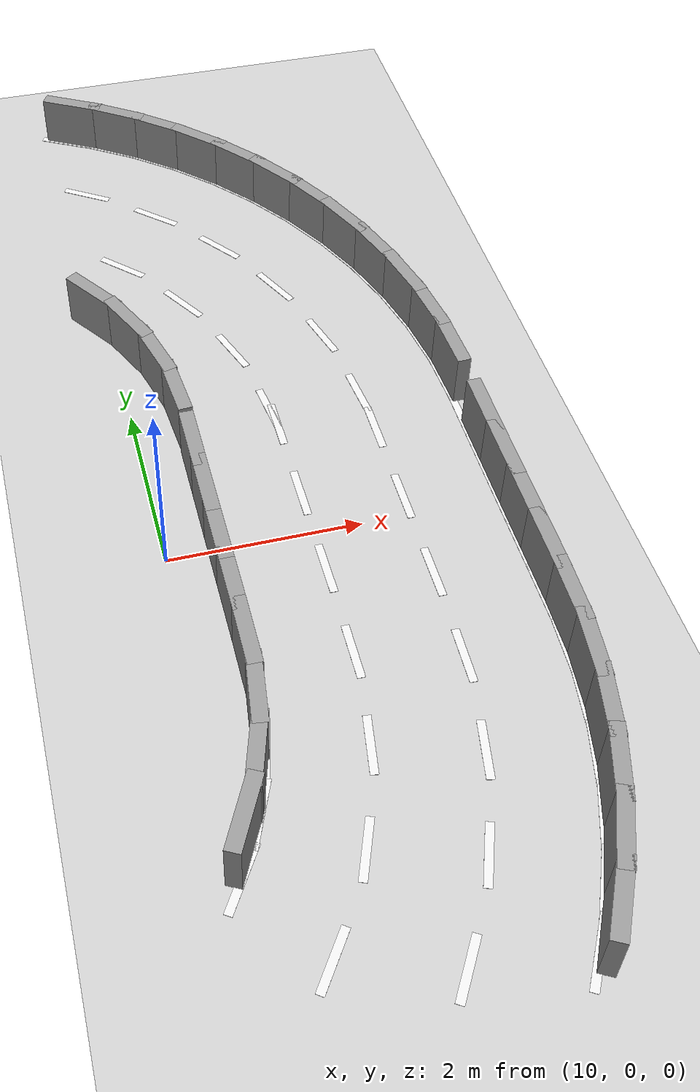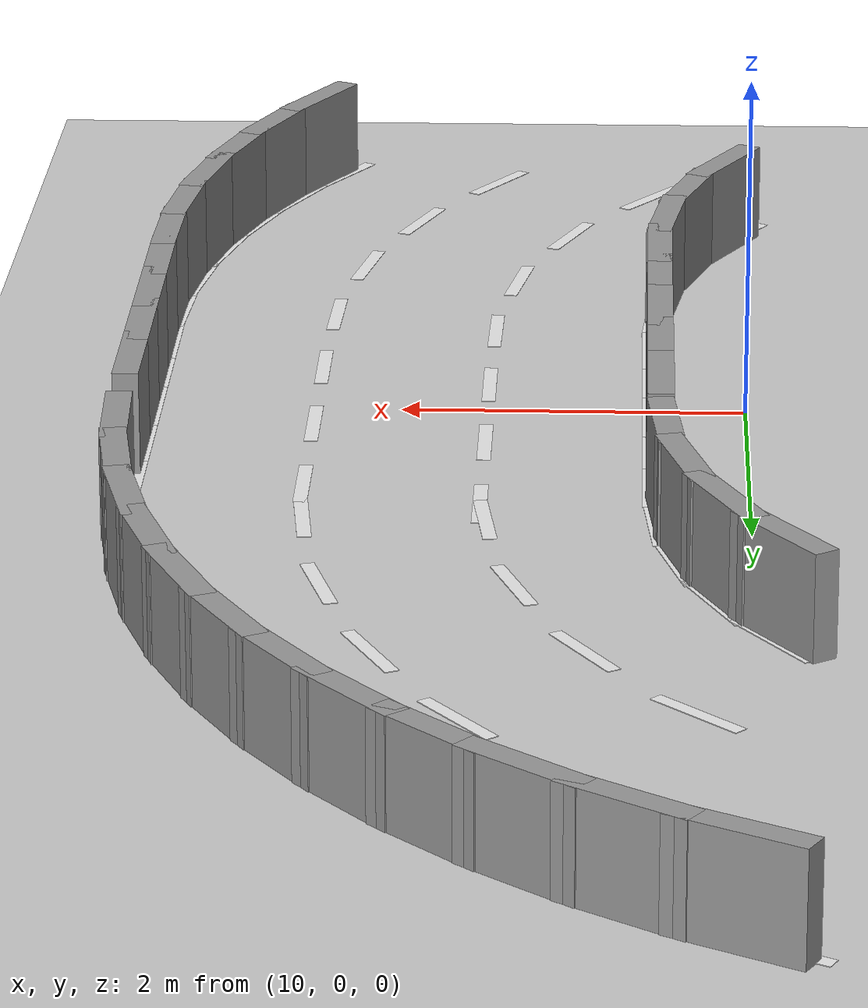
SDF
<sdf version="1.7">
 <world name="default">
  <model name="ground_plane">
   <static>1</static>
   <link name="link">
    <collision name="collision">
     <geometry><plane><normal>0 0 1</normal><size>100 100</size></plane></geometry>
     <surface><friction><ode><mu>100</mu><mu2>50</mu2></ode></friction></surface>
    </collision>
    <visual name="visual">
     <cast_shadows>0</cast_shadows>
     <geometry><plane><normal>0 0 1</normal><size>100 100</size></plane></geometry>
     <material>
      <script><uri>file://media/materials/scripts/gazebo.material</uri><name>Gazebo/Grey</name></script>
     </material>
    </visual>
   </link>
  </model>
  <model name="superspeedway">
   <link name="Wall_0">
    <collision name="Wall_0_Collision">
     <geometry><box><size>0.7493 0.1500 0.6000</size></box></geometry>
     <pose>0 0 0.3000 0 -0 0</pose>
    </collision>
    <visual name="Wall_0_Visual">
     <pose>0 0 0.3000 0 -0 0</pose>
     <geometry><box><size>0.7493 0.1500 0.6000</size></box></geometry>
     <material>
      <script><uri>file://media/materials/scripts/gazebo.material</uri><name>Gazebo/Grey</name></script>
      <ambient>1 1 1 1</ambient>
     </material>
    </visual>
    <pose>10.4743 1.7985 0 0 -0 1.65651</pose>
   </link>
   <link name="Wall_1">
    <collision name="Wall_1_Collision">
     <geometry><box><size>0.7493 0.1500 0.6000</size></box></geometry>
     <pose>0 0 0.3000 0 -0 0</pose>
    </collision>
    <visual name="Wall_1_Visual">
     <pose>0 0 0.3000 0 -0 0</pose>
     <geometry><box><size>0.7493 0.1500 0.6000</size></box></geometry>
     <material>
      <script><uri>file://media/materials/scripts/gazebo.material</uri><name>Gazebo/Grey</name></script>
      <ambient>1 1 1 1</ambient>
     </material>
    </visual>
    <pose>10.3725 2.3868 0 0 -0 1.82794</pose>
   </link>
   <link name="Wall_2">
    <collision name="Wall_2_Collision">
     <geometry><box><size>0.7493 0.1500 0.6000</size></box></geometry>
     <pose>0 0 0.3000 0 -0 0</pose>
    </collision>
    <visual name="Wall_2_Visual">
     <pose>0 0 0.3000 0 -0 0</pose>
     <geometry><box><size>0.7493 0.1500 0.6000</size></box></geometry>
     <material>
      <script><uri>file://media/materials/scripts/gazebo.material</uri><name>Gazebo/Grey</name></script>
      <ambient>1 1 1 1</ambient>
     </material>
    </visual>
    <pose>10.1718 2.9491 0 0 -0 1.99936</pose>
   </link>
   <link name="Wall_3">
    <collision name="Wall_3_Collision">
     <geometry><box><size>0.7493 0.1500 0.6000</size></box></geometry>
     <pose>0 0 0.3000 0 -0 0</pose>
    </collision>
    <visual name="Wall_3_Visual">
     <pose>0 0 0.3000 0 -0 0</pose>
     <geometry><box><size>0.7493 0.1500 0.6000</size></box></geometry>
     <material>
      <script><uri>file://media/materials/scripts/gazebo.material</uri><name>Gazebo/Grey</name></script>
      <ambient>1 1 1 1</ambient>
     </material>
    </visual>
    <pose>9.8781 3.4690 0 0 -0 2.17079</pose>
   </link>
   <link name="Wall_85">
    <collision name="Wall_85_Collision">
     <geometry><box><size>0.7493 0.1500 0.6000</size></box></geometry>
     <pose>0 0 0.3000 0 -0 0</pose>
    </collision>
    <visual name="Wall_85_Visual">
     <pose>0 0 0.3000 0 -0 0</pose>
     <geometry><box><size>0.7493 0.1500 0.6000</size></box></geometry>
     <material>
      <script><uri>file://media/materials/scripts/gazebo.material</uri><name>Gazebo/Grey</name></script>
      <ambient>1 1 1 1</ambient>
     </material>
    </visual>
    <pose>10.0879 -3.1201 0 0 -0 1.08761</pose>
   </link>
   <link name="Wall_86">
    <collision name="Wall_86_Collision">
     <geometry><box><size>0.7493 0.1500 0.6000</size></box></geometry>
     <pose>0 0 0.3000 0 -0 0</pose>
    </collision>
    <visual name="Wall_86_Visual">
     <pose>0 0 0.3000 0 -0 0</pose>
     <geometry><box><size>0.7493 0.1500 0.6000</size></box></geometry>
     <material>
      <script><uri>file://media/materials/scripts/gazebo.material</uri><name>Gazebo/Grey</name></script>
      <ambient>1 1 1 1</ambient>
     </material>
    </visual>
    <pose>10.3190 -2.5696 0 0 -0 1.25904</pose>
   </link>
   <link name="Wall_87">
    <collision name="Wall_87_Collision">
     <geometry><box><size>0.7493 0.1500 0.6000</size></box></geometry>
     <pose>0 0 0.3000 0 -0 0</pose>
    </collision>
    <visual name="Wall_87_Visual">
     <pose>0 0 0.3000 0 -0 0</pose>
     <geometry><box><size>0.7493 0.1500 0.6000</size></box></geometry>
     <material>
      <script><uri>file://media/materials/scripts/gazebo.material</uri><name>Gazebo/Grey</name></script>
      <ambient>1 1 1 1</ambient>
     </material>
    </visual>
    <pose>10.4529 -1.9877 0 0 -0 1.43046</pose>
   </link>
   <link name="Wall_88">
    <collision name="Wall_88_Collision">
     <geometry><box><size>0.7499 0.1500 0.6000</size></box></geometry>
     <pose>0 0 0.3000 0 -0 0</pose>
    </collision>
    <visual name="Wall_88_Visual">
     <pose>0 0 0.3000 0 -0 0</pose>
     <geometry><box><size>0.7499 0.1500 0.6000</size></box></geometry>
     <material>
      <script><uri>file://media/materials/scripts/gazebo.material</uri><name>Gazebo/Grey</name></script>
      <ambient>1 1 1 1</ambient>
     </material>
    </visual>
    <pose>10.4974 -1.3911 0 0 -0 1.56209</pose>
   </link>
   <link name="Wall_89">
    <collision name="Wall_89_Collision">
     <geometry><box><size>0.7500 0.1500 0.6000</size></box></geometry>
     <pose>0 0 0.3000 0 -0 0</pose>
    </collision>
    <visual name="Wall_89_Visual">
     <pose>0 0 0.3000 0 -0 0</pose>
     <geometry><box><size>0.7500 0.1500 0.6000</size></box></geometry>
     <material>
      <script><uri>file://media/materials/scripts/gazebo.material</uri><name>Gazebo/Grey</name></script>
      <ambient>1 1 1 1</ambient>
     </material>
    </visual>
    <pose>10.5000 -0.7912 0 0 -0 1.57080</pose>
   </link>
   <link name="Wall_90">
    <collision name="Wall_90_Collision">
     <geometry><box><size>0.7500 0.1500 0.6000</size></box></geometry>
     <pose>0 0 0.3000 0 -0 0</pose>
    </collision>
    <visual name="Wall_90_Visual">
     <pose>0 0 0.3000 0 -0 0</pose>
     <geometry><box><size>0.7500 0.1500 0.6000</size></box></geometry>
     <material>
      <script><uri>file://media/materials/scripts/gazebo.material</uri><name>Gazebo/Grey</name></script>
      <ambient>1 1 1 1</ambient>
     </material>
    </visual>
    <pose>10.5000 -0.1912 0 0 -0 1.57080</pose>
   </link>
   <link name="Wall_91">
    <collision name="Wall_91_Collision">
     <geometry><box><size>0.7500 0.1500 0.6000</size></box></geometry>
     <pose>0 0 0.3000 0 -0 0</pose>
    </collision>
    <visual name="Wall_91_Visual">
     <pose>0 0 0.3000 0 -0 0</pose>
     <geometry><box><size>0.7500 0.1500 0.6000</size></box></geometry>
     <material>
      <script><uri>file://media/materials/scripts/gazebo.material</uri><name>Gazebo/Grey</name></script>
      <ambient>1 1 1 1</ambient>
     </material>
    </visual>
    <pose>10.5000 0.4088 0 0 -0 1.57080</pose>
   </link>
   <link name="Wall_92">
    <collision name="Wall_92_Collision">
     <geometry><box><size>0.7500 0.1500 0.6000</size></box></geometry>
     <pose>0 0 0.3000 0 -0 0</pose>
    </collision>
    <visual name="Wall_92_Visual">
     <pose>0 0 0.3000 0 -0 0</pose>
     <geometry><box><size>0.7500 0.1500 0.6000</size></box></geometry>
     <material>
      <script><uri>file://media/materials/scripts/gazebo.material</uri><name>Gazebo/Grey</name></script>
      <ambient>1 1 1 1</ambient>
     </material>
    </visual>
    <pose>10.5000 1.0088 0 0 -0 1.57080</pose>
   </link>
   <link name="Wall_93">
    <collision name="Wall_93_Collision">
     <geometry><box><size>0.7498 0.1500 0.6000</size></box></geometry>
     <pose>0 0 0.3000 0 -0 0</pose>
    </collision>
    <visual name="Wall_93_Visual">
     <pose>0 0 0.3000 0 -0 0</pose>
     <geometry><box><size>0.7498 0.1500 0.6000</size></box></geometry>
     <material>
      <script><uri>file://media/materials/scripts/gazebo.material</uri><name>Gazebo/Grey</name></script>
      <ambient>1 1 1 1</ambient>
     </material>
    </visual>
    <pose>13.4862 1.7996 0 0 -0 1.61698</pose>
   </link>
   <link name="Wall_94">
    <collision name="Wall_94_Collision">
     <geometry><box><size>0.7498 0.1500 0.6000</size></box></geometry>
     <pose>0 0 0.3000 0 -0 0</pose>
    </collision>
    <visual name="Wall_94_Visual">
     <pose>0 0 0.3000 0 -0 0</pose>
     <geometry><box><size>0.7498 0.1500 0.6000</size></box></geometry>
     <material>
      <script><uri>file://media/materials/scripts/gazebo.material</uri><name>Gazebo/Grey</name></script>
      <ambient>1 1 1 1</ambient>
     </material>
    </visual>
    <pose>13.4309 2.3962 0 0 -0 1.70924</pose>
   </link>
   <link name="Wall_95">
    <collision name="Wall_95_Collision">
     <geometry><box><size>0.7498 0.1500 0.6000</size></box></geometry>
     <pose>0 0 0.3000 0 -0 0</pose>
    </collision>
    <visual name="Wall_95_Visual">
     <pose>0 0 0.3000 0 -0 0</pose>
     <geometry><box><size>0.7498 0.1500 0.6000</size></box></geometry>
     <material>
      <script><uri>file://media/materials/scripts/gazebo.material</uri><name>Gazebo/Grey</name></script>
      <ambient>1 1 1 1</ambient>
     </material>
    </visual>
    <pose>13.3209 2.9852 0 0 -0 1.80159</pose>
   </link>
   <link name="Wall_96">
    <collision name="Wall_96_Collision">
     <geometry><box><size>0.7498 0.1500 0.6000</size></box></geometry>
     <pose>0 0 0.3000 0 -0 0</pose>
    </collision>
    <visual name="Wall_96_Visual">
     <pose>0 0 0.3000 0 -0 0</pose>
     <geometry><box><size>0.7498 0.1500 0.6000</size></box></geometry>
     <material>
      <script><uri>file://media/materials/scripts/gazebo.material</uri><name>Gazebo/Grey</name></script>
      <ambient>1 1 1 1</ambient>
     </material>
    </visual>
    <pose>13.1571 3.5615 0 0 -0 1.89385</pose>
   </link>
   <link name="Wall_97">
    <collision name="Wall_97_Collision">
     <geometry><box><size>0.7498 0.1500 0.6000</size></box></geometry>
     <pose>0 0 0.3000 0 -0 0</pose>
    </collision>
    <visual name="Wall_97_Visual">
     <pose>0 0 0.3000 0 -0 0</pose>
     <geometry><box><size>0.7498 0.1500 0.6000</size></box></geometry>
     <material>
      <script><uri>file://media/materials/scripts/gazebo.material</uri><name>Gazebo/Grey</name></script>
      <ambient>1 1 1 1</ambient>
     </material>
    </visual>
    <pose>12.9409 4.1202 0 0 -0 1.98621</pose>
   </link>
   <link name="Wall_98">
    <collision name="Wall_98_Collision">
     <geometry><box><size>0.7498 0.1500 0.6000</size></box></geometry>
     <pose>0 0 0.3000 0 -0 0</pose>
    </collision>
    <visual name="Wall_98_Visual">
     <pose>0 0 0.3000 0 -0 0</pose>
     <geometry><box><size>0.7498 0.1500 0.6000</size></box></geometry>
     <material>
      <script><uri>file://media/materials/scripts/gazebo.material</uri><name>Gazebo/Grey</name></script>
      <ambient>1 1 1 1</ambient>
     </material>
    </visual>
    <pose>12.6741 4.6567 0 0 -0 2.07847</pose>
   </link>
   <link name="Wall_99">
    <collision name="Wall_99_Collision">
     <geometry><box><size>0.7498 0.1500 0.6000</size></box></geometry>
     <pose>0 0 0.3000 0 -0 0</pose>
    </collision>
    <visual name="Wall_99_Visual">
     <pose>0 0 0.3000 0 -0 0</pose>
     <geometry><box><size>0.7498 0.1500 0.6000</size></box></geometry>
     <material>
      <script><uri>file://media/materials/scripts/gazebo.material</uri><name>Gazebo/Grey</name></script>
      <ambient>1 1 1 1</ambient>
     </material>
    </visual>
    <pose>12.3589 5.1663 0 0 -0 2.17082</pose>
   </link>
   <link name="Wall_100">
    <collision name="Wall_100_Collision">
     <geometry><box><size>0.7498 0.1500 0.6000</size></box></geometry>
     <pose>0 0 0.3000 0 -0 0</pose>
    </collision>
    <visual name="Wall_100_Visual">
     <pose>0 0 0.3000 0 -0 0</pose>
     <geometry><box><size>0.7498 0.1500 0.6000</size></box></geometry>
     <material>
      <script><uri>file://media/materials/scripts/gazebo.material</uri><name>Gazebo/Grey</name></script>
      <ambient>1 1 1 1</ambient>
     </material>
    </visual>
    <pose>11.9982 5.6446 0 0 -0 2.26309</pose>
   </link>
   <link name="Wall_101">
    <collision name="Wall_101_Collision">
     <geometry><box><size>0.7498 0.1500 0.6000</size></box></geometry>
     <pose>0 0 0.3000 0 -0 0</pose>
    </collision>
    <visual name="Wall_101_Visual">
     <pose>0 0 0.3000 0 -0 0</pose>
     <geometry><box><size>0.7498 0.1500 0.6000</size></box></geometry>
     <material>
      <script><uri>file://media/materials/scripts/gazebo.material</uri><name>Gazebo/Grey</name></script>
      <ambient>1 1 1 1</ambient>
     </material>
    </visual>
    <pose>11.5949 6.0877 0 0 -0 2.35544</pose>
   </link>
   <link name="Wall_102">
    <collision name="Wall_102_Collision">
     <geometry><box><size>0.7498 0.1500 0.6000</size></box></geometry>
     <pose>0 0 0.3000 0 -0 0</pose>
    </collision>
    <visual name="Wall_102_Visual">
     <pose>0 0 0.3000 0 -0 0</pose>
     <geometry><box><size>0.7498 0.1500 0.6000</size></box></geometry>
     <material>
      <script><uri>file://media/materials/scripts/gazebo.material</uri><name>Gazebo/Grey</name></script>
      <ambient>1 1 1 1</ambient>
     </material>
    </visual>
    <pose>11.1524 6.4917 0 0 -0 2.44771</pose>
   </link>
   <link name="Wall_103">
    <collision name="Wall_103_Collision">
     <geometry><box><size>0.7498 0.1500 0.6000</size></box></geometry>
     <pose>0 0 0.3000 0 -0 0</pose>
    </collision>
    <visual name="Wall_103_Visual">
     <pose>0 0 0.3000 0 -0 0</pose>
     <geometry><box><size>0.7498 0.1500 0.6000</size></box></geometry>
     <material>
      <script><uri>file://media/materials/scripts/gazebo.material</uri><name>Gazebo/Grey</name></script>
      <ambient>1 1 1 1</ambient>
     </material>
    </visual>
    <pose>10.6746 6.8532 0 0 -0 2.54005</pose>
   </link>
   <link name="Wall_104">
    <collision name="Wall_104_Collision">
     <geometry><box><size>0.7498 0.1500 0.6000</size></box></geometry>
     <pose>0 0 0.3000 0 -0 0</pose>
    </collision>
    <visual name="Wall_104_Visual">
     <pose>0 0 0.3000 0 -0 0</pose>
     <geometry><box><size>0.7498 0.1500 0.6000</size></box></geometry>
     <material>
      <script><uri>file://media/materials/scripts/gazebo.material</uri><name>Gazebo/Grey</name></script>
      <ambient>1 1 1 1</ambient>
     </material>
    </visual>
    <pose>10.1655 7.1692 0 0 -0 2.63232</pose>
   </link>
   <link name="Wall_207">
    <collision name="Wall_207_Collision">
     <geometry><box><size>0.7498 0.1500 0.6000</size></box></geometry>
     <pose>0 0 0.3000 0 -0 0</pose>
    </collision>
    <visual name="Wall_207_Visual">
     <pose>0 0 0.3000 0 -0 0</pose>
     <geometry><box><size>0.7498 0.1500 0.6000</size></box></geometry>
     <material>
      <script><uri>file://media/materials/scripts/gazebo.material</uri><name>Gazebo/Grey</name></script>
      <ambient>1 1 1 1</ambient>
     </material>
    </visual>
    <pose>12.7498 -4.5166 0 0 -0 1.08760</pose>
   </link>
   <link name="Wall_208">
    <collision name="Wall_208_Collision">
     <geometry><box><size>0.7498 0.1500 0.6000</size></box></geometry>
     <pose>0 0 0.3000 0 -0 0</pose>
    </collision>
    <visual name="Wall_208_Visual">
     <pose>0 0 0.3000 0 -0 0</pose>
     <geometry><box><size>0.7498 0.1500 0.6000</size></box></geometry>
     <material>
      <script><uri>file://media/materials/scripts/gazebo.material</uri><name>Gazebo/Grey</name></script>
      <ambient>1 1 1 1</ambient>
     </material>
    </visual>
    <pose>13.0033 -3.9738 0 0 -0 1.17994</pose>
   </link>
   <link name="Wall_209">
    <collision name="Wall_209_Collision">
     <geometry><box><size>0.7498 0.1500 0.6000</size></box></geometry>
     <pose>0 0 0.3000 0 -0 0</pose>
    </collision>
    <visual name="Wall_209_Visual">
     <pose>0 0 0.3000 0 -0 0</pose>
     <geometry><box><size>0.7498 0.1500 0.6000</size></box></geometry>
     <material>
      <script><uri>file://media/materials/scripts/gazebo.material</uri><name>Gazebo/Grey</name></script>
      <ambient>1 1 1 1</ambient>
     </material>
    </visual>
    <pose>13.2058 -3.4099 0 0 -0 1.27222</pose>
   </link>
   <link name="Wall_210">
    <collision name="Wall_210_Collision">
     <geometry><box><size>0.7498 0.1500 0.6000</size></box></geometry>
     <pose>0 0 0.3000 0 -0 0</pose>
    </collision>
    <visual name="Wall_210_Visual">
     <pose>0 0 0.3000 0 -0 0</pose>
     <geometry><box><size>0.7498 0.1500 0.6000</size></box></geometry>
     <material>
      <script><uri>file://media/materials/scripts/gazebo.material</uri><name>Gazebo/Grey</name></script>
      <ambient>1 1 1 1</ambient>
     </material>
    </visual>
    <pose>13.3554 -2.8297 0 0 -0 1.36456</pose>
   </link>
   <link name="Wall_211">
    <collision name="Wall_211_Collision">
     <geometry><box><size>0.7498 0.1500 0.6000</size></box></geometry>
     <pose>0 0 0.3000 0 -0 0</pose>
    </collision>
    <visual name="Wall_211_Visual">
     <pose>0 0 0.3000 0 -0 0</pose>
     <geometry><box><size>0.7498 0.1500 0.6000</size></box></geometry>
     <material>
      <script><uri>file://media/materials/scripts/gazebo.material</uri><name>Gazebo/Grey</name></script>
      <ambient>1 1 1 1</ambient>
     </material>
    </visual>
    <pose>13.4510 -2.2383 0 0 -0 1.45683</pose>
   </link>
   <link name="Wall_212">
    <collision name="Wall_212_Collision">
     <geometry><box><size>0.7498 0.1500 0.6000</size></box></geometry>
     <pose>0 0 0.3000 0 -0 0</pose>
    </collision>
    <visual name="Wall_212_Visual">
     <pose>0 0 0.3000 0 -0 0</pose>
     <geometry><box><size>0.7498 0.1500 0.6000</size></box></geometry>
     <material>
      <script><uri>file://media/materials/scripts/gazebo.material</uri><name>Gazebo/Grey</name></script>
      <ambient>1 1 1 1</ambient>
     </material>
    </visual>
    <pose>13.4925 -1.6405 0 0 -0 1.54590</pose>
   </link>
   <link name="Wall_213">
    <collision name="Wall_213_Collision">
     <geometry><box><size>0.7500 0.1500 0.6000</size></box></geometry>
     <pose>0 0 0.3000 0 -0 0</pose>
    </collision>
    <visual name="Wall_213_Visual">
     <pose>0 0 0.3000 0 -0 0</pose>
     <geometry><box><size>0.7500 0.1500 0.6000</size></box></geometry>
     <material>
      <script><uri>file://media/materials/scripts/gazebo.material</uri><name>Gazebo/Grey</name></script>
      <ambient>1 1 1 1</ambient>
     </material>
    </visual>
    <pose>13.5000 -1.0406 0 0 -0 1.57080</pose>
   </link>
   <link name="Wall_214">
    <collision name="Wall_214_Collision">
     <geometry><box><size>0.7500 0.1500 0.6000</size></box></geometry>
     <pose>0 0 0.3000 0 -0 0</pose>
    </collision>
    <visual name="Wall_214_Visual">
     <pose>0 0 0.3000 0 -0 0</pose>
     <geometry><box><size>0.7500 0.1500 0.6000</size></box></geometry>
     <material>
      <script><uri>file://media/materials/scripts/gazebo.material</uri><name>Gazebo/Grey</name></script>
      <ambient>1 1 1 1</ambient>
     </material>
    </visual>
    <pose>13.5000 -0.4406 0 0 -0 1.57080</pose>
   </link>
   <link name="Wall_215">
    <collision name="Wall_215_Collision">
     <geometry><box><size>0.7500 0.1500 0.6000</size></box></geometry>
     <pose>0 0 0.3000 0 -0 0</pose>
    </collision>
    <visual name="Wall_215_Visual">
     <pose>0 0 0.3000 0 -0 0</pose>
     <geometry><box><size>0.7500 0.1500 0.6000</size></box></geometry>
     <material>
      <script><uri>file://media/materials/scripts/gazebo.material</uri><name>Gazebo/Grey</name></script>
      <ambient>1 1 1 1</ambient>
     </material>
    </visual>
    <pose>13.5000 0.1594 0 0 -0 1.57080</pose>
   </link>
   <link name="Wall_216">
    <collision name="Wall_216_Collision">
     <geometry><box><size>0.7500 0.1500 0.6000</size></box></geometry>
     <pose>0 0 0.3000 0 -0 0</pose>
    </collision>
    <visual name="Wall_216_Visual">
     <pose>0 0 0.3000 0 -0 0</pose>
     <geometry><box><size>0.7500 0.1500 0.6000</size></box></geometry>
     <material>
      <script><uri>file://media/materials/scripts/gazebo.material</uri><name>Gazebo/Grey</name></script>
      <ambient>1 1 1 1</ambient>
     </material>
    </visual>
    <pose>13.5000 0.7594 0 0 -0 1.57080</pose>
   </link>
   <link name="Paint_0">
    <visual name="Paint_0_Visual">
     <pose>0 0 0.0020 0 -0 0</pose>
     <geometry><box><size>0.6800 0.0800 0.0040</size></box></geometry>
     <material>
      <script><uri>file://media/materials/scripts/gazebo.material</uri><name>Gazebo/White</name></script>
      <ambient>1 1 1 1</ambient>
     </material>
    </visual>
    <pose>10.5313 1.8388 0 0 -0 1.65527</pose>
   </link>
   <link name="Paint_1">
    <visual name="Paint_1_Visual">
     <pose>0 0 0.0020 0 -0 0</pose>
     <geometry><box><size>0.6800 0.0800 0.0040</size></box></geometry>
     <material>
      <script><uri>file://media/materials/scripts/gazebo.material</uri><name>Gazebo/White</name></script>
      <ambient>1 1 1 1</ambient>
     </material>
    </visual>
    <pose>10.4242 2.4270 0 0 -0 1.82399</pose>
   </link>
   <link name="Paint_2">
    <visual name="Paint_2_Visual">
     <pose>0 0 0.0020 0 -0 0</pose>
     <geometry><box><size>0.6800 0.0800 0.0040</size></box></geometry>
     <material>
      <script><uri>file://media/materials/scripts/gazebo.material</uri><name>Gazebo/White</name></script>
      <ambient>1 1 1 1</ambient>
     </material>
    </visual>
    <pose>10.2198 2.9888 0 0 -0 1.99274</pose>
   </link>
   <link name="Paint_3">
    <visual name="Paint_3_Visual">
     <pose>0 0 0.0020 0 -0 0</pose>
     <geometry><box><size>0.6800 0.0800 0.0040</size></box></geometry>
     <material>
      <script><uri>file://media/materials/scripts/gazebo.material</uri><name>Gazebo/White</name></script>
      <ambient>1 1 1 1</ambient>
     </material>
    </visual>
    <pose>9.9240 3.5084 0 0 -0 2.16147</pose>
   </link>
   <link name="Paint_85">
    <visual name="Paint_85_Visual">
     <pose>0 0 0.0020 0 -0 0</pose>
     <geometry><box><size>0.6797 0.0800 0.0040</size></box></geometry>
     <material>
      <script><uri>file://media/materials/scripts/gazebo.material</uri><name>Gazebo/White</name></script>
      <ambient>1 1 1 1</ambient>
     </material>
    </visual>
    <pose>9.9982 -3.3927 0 0 -0 0.99651</pose>
   </link>
   <link name="Paint_86">
    <visual name="Paint_86_Visual">
     <pose>0 0 0.0020 0 -0 0</pose>
     <geometry><box><size>0.6797 0.0800 0.0040</size></box></geometry>
     <material>
      <script><uri>file://media/materials/scripts/gazebo.material</uri><name>Gazebo/White</name></script>
      <ambient>1 1 1 1</ambient>
     </material>
    </visual>
    <pose>10.2735 -2.8623 0 0 -0 1.16523</pose>
   </link>
   <link name="Paint_87">
    <visual name="Paint_87_Visual">
     <pose>0 0 0.0020 0 -0 0</pose>
     <geometry><box><size>0.6797 0.0800 0.0040</size></box></geometry>
     <material>
      <script><uri>file://media/materials/scripts/gazebo.material</uri><name>Gazebo/White</name></script>
      <ambient>1 1 1 1</ambient>
     </material>
    </visual>
    <pose>10.4557 -2.2932 0 0 -0 1.33398</pose>
   </link>
   <link name="Paint_88">
    <visual name="Paint_88_Visual">
     <pose>0 0 0.0020 0 -0 0</pose>
     <geometry><box><size>0.6799 0.0800 0.0040</size></box></geometry>
     <material>
      <script><uri>file://media/materials/scripts/gazebo.material</uri><name>Gazebo/White</name></script>
      <ambient>1 1 1 1</ambient>
     </material>
    </visual>
    <pose>10.5412 -1.7016 0 0 -0 1.49848</pose>
   </link>
   <link name="Paint_89">
    <visual name="Paint_89_Visual">
     <pose>0 0 0.0020 0 -0 0</pose>
     <geometry><box><size>0.6800 0.0800 0.0040</size></box></geometry>
     <material>
      <script><uri>file://media/materials/scripts/gazebo.material</uri><name>Gazebo/White</name></script>
      <ambient>1 1 1 1</ambient>
     </material>
    </visual>
    <pose>10.5600 -1.1023 0 0 -0 1.57080</pose>
   </link>
   <link name="Paint_90">
    <visual name="Paint_90_Visual">
     <pose>0 0 0.0020 0 -0 0</pose>
     <geometry><box><size>0.6800 0.0800 0.0040</size></box></geometry>
     <material>
      <script><uri>file://media/materials/scripts/gazebo.material</uri><name>Gazebo/White</name></script>
      <ambient>1 1 1 1</ambient>
     </material>
    </visual>
    <pose>10.5600 -0.5023 0 0 -0 1.57080</pose>
   </link>
   <link name="Paint_91">
    <visual name="Paint_91_Visual">
     <pose>0 0 0.0020 0 -0 0</pose>
     <geometry><box><size>0.6800 0.0800 0.0040</size></box></geometry>
     <material>
      <script><uri>file://media/materials/scripts/gazebo.material</uri><name>Gazebo/White</name></script>
      <ambient>1 1 1 1</ambient>
     </material>
    </visual>
    <pose>10.5600 0.0977 0 0 -0 1.57080</pose>
   </link>
   <link name="Paint_92">
    <visual name="Paint_92_Visual">
     <pose>0 0 0.0020 0 -0 0</pose>
     <geometry><box><size>0.6800 0.0800 0.0040</size></box></geometry>
     <material>
      <script><uri>file://media/materials/scripts/gazebo.material</uri><name>Gazebo/White</name></script>
      <ambient>1 1 1 1</ambient>
     </material>
    </visual>
    <pose>10.5600 0.6977 0 0 -0 1.57080</pose>
   </link>
   <link name="Paint_93">
    <visual name="Paint_93_Visual">
     <pose>0 0 0.0020 0 -0 0</pose>
     <geometry><box><size>0.6222 0.0800 0.0040</size></box></geometry>
     <material>
      <script><uri>file://media/materials/scripts/gazebo.material</uri><name>Gazebo/White</name></script>
      <ambient>1 1 1 1</ambient>
     </material>
    </visual>
    <pose>10.5600 1.2689 0 0 -0 1.57080</pose>
   </link>
   <link name="Paint_94">
    <visual name="Paint_94_Visual">
     <pose>0 0 0.0020 0 -0 0</pose>
     <geometry><box><size>0.6800 0.0800 0.0040</size></box></geometry>
     <material>
      <script><uri>file://media/materials/scripts/gazebo.material</uri><name>Gazebo/White</name></script>
      <ambient>1 1 1 1</ambient>
     </material>
    </visual>
    <pose>13.4241 1.8397 0 0 -0 1.61744</pose>
   </link>
   <link name="Paint_95">
    <visual name="Paint_95_Visual">
     <pose>0 0 0.0020 0 -0 0</pose>
     <geometry><box><size>0.6800 0.0800 0.0040</size></box></geometry>
     <material>
      <script><uri>file://media/materials/scripts/gazebo.material</uri><name>Gazebo/White</name></script>
      <ambient>1 1 1 1</ambient>
     </material>
    </visual>
    <pose>13.3646 2.4361 0 0 -0 1.71062</pose>
   </link>
   <link name="Paint_96">
    <visual name="Paint_96_Visual">
     <pose>0 0 0.0020 0 -0 0</pose>
     <geometry><box><size>0.6800 0.0800 0.0040</size></box></geometry>
     <material>
      <script><uri>file://media/materials/scripts/gazebo.material</uri><name>Gazebo/White</name></script>
      <ambient>1 1 1 1</ambient>
     </material>
    </visual>
    <pose>13.2499 3.0243 0 0 -0 1.80380</pose>
   </link>
   <link name="Paint_97">
    <visual name="Paint_97_Visual">
     <pose>0 0 0.0020 0 -0 0</pose>
     <geometry><box><size>0.6800 0.0800 0.0040</size></box></geometry>
     <material>
      <script><uri>file://media/materials/scripts/gazebo.material</uri><name>Gazebo/White</name></script>
      <ambient>1 1 1 1</ambient>
     </material>
    </visual>
    <pose>13.0809 3.5994 0 0 -0 1.89703</pose>
   </link>
   <link name="Paint_98">
    <visual name="Paint_98_Visual">
     <pose>0 0 0.0020 0 -0 0</pose>
     <geometry><box><size>0.6800 0.0800 0.0040</size></box></geometry>
     <material>
      <script><uri>file://media/materials/scripts/gazebo.material</uri><name>Gazebo/White</name></script>
      <ambient>1 1 1 1</ambient>
     </material>
    </visual>
    <pose>12.8591 4.1562 0 0 -0 1.99023</pose>
   </link>
   <link name="Paint_99">
    <visual name="Paint_99_Visual">
     <pose>0 0 0.0020 0 -0 0</pose>
     <geometry><box><size>0.6800 0.0800 0.0040</size></box></geometry>
     <material>
      <script><uri>file://media/materials/scripts/gazebo.material</uri><name>Gazebo/White</name></script>
      <ambient>1 1 1 1</ambient>
     </material>
    </visual>
    <pose>12.5865 4.6899 0 0 -0 2.08342</pose>
   </link>
   <link name="Paint_100">
    <visual name="Paint_100_Visual">
     <pose>0 0 0.0020 0 -0 0</pose>
     <geometry><box><size>0.6800 0.0800 0.0040</size></box></geometry>
     <material>
      <script><uri>file://media/materials/scripts/gazebo.material</uri><name>Gazebo/White</name></script>
      <ambient>1 1 1 1</ambient>
     </material>
    </visual>
    <pose>12.2653 5.1960 0 0 -0 2.17662</pose>
   </link>
   <link name="Paint_101">
    <visual name="Paint_101_Visual">
     <pose>0 0 0.0020 0 -0 0</pose>
     <geometry><box><size>0.6800 0.0800 0.0040</size></box></geometry>
     <material>
      <script><uri>file://media/materials/scripts/gazebo.material</uri><name>Gazebo/White</name></script>
      <ambient>1 1 1 1</ambient>
     </material>
    </visual>
    <pose>11.8985 5.6700 0 0 -0 2.26984</pose>
   </link>
   <link name="Paint_102">
    <visual name="Paint_102_Visual">
     <pose>0 0 0.0020 0 -0 0</pose>
     <geometry><box><size>0.6800 0.0800 0.0040</size></box></geometry>
     <material>
      <script><uri>file://media/materials/scripts/gazebo.material</uri><name>Gazebo/White</name></script>
      <ambient>1 1 1 1</ambient>
     </material>
    </visual>
    <pose>11.4892 6.1078 0 0 -0 2.36303</pose>
   </link>
   <link name="Paint_103">
    <visual name="Paint_103_Visual">
     <pose>0 0 0.0020 0 -0 0</pose>
     <geometry><box><size>0.6800 0.0800 0.0040</size></box></geometry>
     <material>
      <script><uri>file://media/materials/scripts/gazebo.material</uri><name>Gazebo/White</name></script>
      <ambient>1 1 1 1</ambient>
     </material>
    </visual>
    <pose>11.0408 6.5055 0 0 -0 2.45621</pose>
   </link>
   <link name="Paint_104">
    <visual name="Paint_104_Visual">
     <pose>0 0 0.0020 0 -0 0</pose>
     <geometry><box><size>0.6800 0.0800 0.0040</size></box></geometry>
     <material>
      <script><uri>file://media/materials/scripts/gazebo.material</uri><name>Gazebo/White</name></script>
      <ambient>1 1 1 1</ambient>
     </material>
    </visual>
    <pose>10.5574 6.8599 0 0 -0 2.54946</pose>
   </link>
   <link name="Paint_105">
    <visual name="Paint_105_Visual">
     <pose>0 0 0.0020 0 -0 0</pose>
     <geometry><box><size>0.6800 0.0800 0.0040</size></box></geometry>
     <material>
      <script><uri>file://media/materials/scripts/gazebo.material</uri><name>Gazebo/White</name></script>
      <ambient>1 1 1 1</ambient>
     </material>
    </visual>
    <pose>10.0432 7.1677 0 0 -0 2.64264</pose>
   </link>
   <link name="Paint_207">
    <visual name="Paint_207_Visual">
     <pose>0 0 0.0020 0 -0 0</pose>
     <geometry><box><size>0.6799 0.0800 0.0040</size></box></geometry>
     <material>
      <script><uri>file://media/materials/scripts/gazebo.material</uri><name>Gazebo/White</name></script>
      <ambient>1 1 1 1</ambient>
     </material>
    </visual>
    <pose>12.6013 -4.6626 0 0 -0 1.05059</pose>
   </link>
   <link name="Paint_208">
    <visual name="Paint_208_Visual">
     <pose>0 0 0.0020 0 -0 0</pose>
     <geometry><box><size>0.6799 0.0800 0.0040</size></box></geometry>
     <material>
      <script><uri>file://media/materials/scripts/gazebo.material</uri><name>Gazebo/White</name></script>
      <ambient>1 1 1 1</ambient>
     </material>
    </visual>
    <pose>12.8714 -4.1276 0 0 -0 1.14377</pose>
   </link>
   <link name="Paint_209">
    <visual name="Paint_209_Visual">
     <pose>0 0 0.0020 0 -0 0</pose>
     <geometry><box><size>0.6799 0.0800 0.0040</size></box></geometry>
     <material>
      <script><uri>file://media/materials/scripts/gazebo.material</uri><name>Gazebo/White</name></script>
      <ambient>1 1 1 1</ambient>
     </material>
    </visual>
    <pose>13.0904 -3.5698 0 0 -0 1.23702</pose>
   </link>
   <link name="Paint_210">
    <visual name="Paint_210_Visual">
     <pose>0 0 0.0020 0 -0 0</pose>
     <geometry><box><size>0.6799 0.0800 0.0040</size></box></geometry>
     <material>
      <script><uri>file://media/materials/scripts/gazebo.material</uri><name>Gazebo/White</name></script>
      <ambient>1 1 1 1</ambient>
     </material>
    </visual>
    <pose>13.2566 -2.9940 0 0 -0 1.33020</pose>
   </link>
   <link name="Paint_211">
    <visual name="Paint_211_Visual">
     <pose>0 0 0.0020 0 -0 0</pose>
     <geometry><box><size>0.6799 0.0800 0.0040</size></box></geometry>
     <material>
      <script><uri>file://media/materials/scripts/gazebo.material</uri><name>Gazebo/White</name></script>
      <ambient>1 1 1 1</ambient>
     </material>
    </visual>
    <pose>13.3685 -2.4052 0 0 -0 1.42338</pose>
   </link>
   <link name="Paint_212">
    <visual name="Paint_212_Visual">
     <pose>0 0 0.0020 0 -0 0</pose>
     <geometry><box><size>0.6800 0.0800 0.0040</size></box></geometry>
     <material>
      <script><uri>file://media/materials/scripts/gazebo.material</uri><name>Gazebo/White</name></script>
      <ambient>1 1 1 1</ambient>
     </material>
    </visual>
    <pose>13.4254 -1.8086 0 0 -0 1.51570</pose>
   </link>
   <link name="Paint_213">
    <visual name="Paint_213_Visual">
     <pose>0 0 0.0020 0 -0 0</pose>
     <geometry><box><size>0.6800 0.0800 0.0040</size></box></geometry>
     <material>
      <script><uri>file://media/materials/scripts/gazebo.material</uri><name>Gazebo/White</name></script>
      <ambient>1 1 1 1</ambient>
     </material>
    </visual>
    <pose>13.4399 -1.2090 0 0 -0 1.57027</pose>
   </link>
   <link name="Paint_214">
    <visual name="Paint_214_Visual">
     <pose>0 0 0.0020 0 -0 0</pose>
     <geometry><box><size>0.6800 0.0800 0.0040</size></box></geometry>
     <material>
      <script><uri>file://media/materials/scripts/gazebo.material</uri><name>Gazebo/White</name></script>
      <ambient>1 1 1 1</ambient>
     </material>
    </visual>
    <pose>13.4400 -0.6090 0 0 -0 1.57080</pose>
   </link>
   <link name="Paint_215">
    <visual name="Paint_215_Visual">
     <pose>0 0 0.0020 0 -0 0</pose>
     <geometry><box><size>0.6800 0.0800 0.0040</size></box></geometry>
     <material>
      <script><uri>file://media/materials/scripts/gazebo.material</uri><name>Gazebo/White</name></script>
      <ambient>1 1 1 1</ambient>
     </material>
    </visual>
    <pose>13.4400 -0.0090 0 0 -0 1.57080</pose>
   </link>
   <link name="Paint_216">
    <visual name="Paint_216_Visual">
     <pose>0 0 0.0020 0 -0 0</pose>
     <geometry><box><size>0.6800 0.0800 0.0040</size></box></geometry>
     <material>
      <script><uri>file://media/materials/scripts/gazebo.material</uri><name>Gazebo/White</name></script>
      <ambient>1 1 1 1</ambient>
     </material>
    </visual>
    <pose>13.4400 0.5910 0 0 -0 1.57080</pose>
   </link>
   <link name="Paint_217">
    <visual name="Paint_217_Visual">
     <pose>0 0 0.0020 0 -0 0</pose>
     <geometry><box><size>0.6800 0.0800 0.0040</size></box></geometry>
     <material>
      <script><uri>file://media/materials/scripts/gazebo.material</uri><name>Gazebo/White</name></script>
      <ambient>1 1 1 1</ambient>
     </material>
    </visual>
    <pose>13.4400 1.1910 0 0 -0 1.57080</pose>
   </link>
   <link name="Paint_218">
    <visual name="Paint_218_Visual">
     <pose>0 0 0.0020 0 -0 0</pose>
     <geometry><box><size>0.1290 0.0800 0.0040</size></box></geometry>
     <material>
      <script><uri>file://media/materials/scripts/gazebo.material</uri><name>Gazebo/White</name></script>
      <ambient>1 1 1 1</ambient>
     </material>
    </visual>
    <pose>13.4400 1.5155 0 0 -0 1.57080</pose>
   </link>
   <link name="Paint_219">
    <visual name="Paint_219_Visual">
     <pose>0 0 0.0020 0 -0 0</pose>
     <geometry><box><size>0.6000 0.0800 0.0040</size></box></geometry>
     <material>
      <script><uri>file://media/materials/scripts/gazebo.material</uri><name>Gazebo/White</name></script>
      <ambient>1 1 1 1</ambient>
     </material>
    </visual>
    <pose>11.4641 1.7978 0 0 -0 1.69084</pose>
   </link>
   <link name="Paint_220">
    <visual name="Paint_220_Visual">
     <pose>0 0 0.0020 0 -0 0</pose>
     <geometry><box><size>0.6000 0.0800 0.0040</size></box></geometry>
     <material>
      <script><uri>file://media/materials/scripts/gazebo.material</uri><name>Gazebo/White</name></script>
      <ambient>1 1 1 1</ambient>
     </material>
    </visual>
    <pose>11.2823 2.7741 0 0 -0 1.90442</pose>
   </link>
   <link name="Paint_221">
    <visual name="Paint_221_Visual">
     <pose>0 0 0.0020 0 -0 0</pose>
     <geometry><box><size>0.6000 0.0800 0.0040</size></box></geometry>
     <material>
      <script><uri>file://media/materials/scripts/gazebo.material</uri><name>Gazebo/White</name></script>
      <ambient>1 1 1 1</ambient>
     </material>
    </visual>
    <pose>10.8981 3.6884 0 0 -0 2.11801</pose>
   </link>
   <link name="Paint_222">
    <visual name="Paint_222_Visual">
     <pose>0 0 0.0020 0 -0 0</pose>
     <geometry><box><size>0.6000 0.0800 0.0040</size></box></geometry>
     <material>
      <script><uri>file://media/materials/scripts/gazebo.material</uri><name>Gazebo/White</name></script>
      <ambient>1 1 1 1</ambient>
     </material>
    </visual>
    <pose>10.3225 4.4961 0 0 -0 2.35780</pose>
   </link>
   <link name="Paint_275">
    <visual name="Paint_275_Visual">
     <pose>0 0 0.0020 0 -0 0</pose>
     <geometry><box><size>0.6000 0.0800 0.0040</size></box></geometry>
     <material>
      <script><uri>file://media/materials/scripts/gazebo.material</uri><name>Gazebo/White</name></script>
      <ambient>1 1 1 1</ambient>
     </material>
    </visual>
    <pose>10.5401 -4.2289 0 0 -0 0.95048</pose>
   </link>
   <link name="Paint_276">
    <visual name="Paint_276_Visual">
     <pose>0 0 0.0020 0 -0 0</pose>
     <geometry><box><size>0.6000 0.0800 0.0040</size></box></geometry>
     <material>
      <script><uri>file://media/materials/scripts/gazebo.material</uri><name>Gazebo/White</name></script>
      <ambient>1 1 1 1</ambient>
     </material>
    </visual>
    <pose>11.0576 -3.3830 0 0 -0 1.18800</pose>
   </link>
   <link name="Paint_277">
    <visual name="Paint_277_Visual">
     <pose>0 0 0.0020 0 -0 0</pose>
     <geometry><box><size>0.6000 0.0800 0.0040</size></box></geometry>
     <material>
      <script><uri>file://media/materials/scripts/gazebo.material</uri><name>Gazebo/White</name></script>
      <ambient>1 1 1 1</ambient>
     </material>
    </visual>
    <pose>11.3682 -2.4399 0 0 -0 1.40352</pose>
   </link>
   <link name="Paint_278">
    <visual name="Paint_278_Visual">
     <pose>0 0 0.0020 0 -0 0</pose>
     <geometry><box><size>0.6000 0.0800 0.0040</size></box></geometry>
     <material>
      <script><uri>file://media/materials/scripts/gazebo.material</uri><name>Gazebo/White</name></script>
      <ambient>1 1 1 1</ambient>
     </material>
    </visual>
    <pose>11.4889 -1.4531 0 0 -0 1.55500</pose>
   </link>
   <link name="Paint_279">
    <visual name="Paint_279_Visual">
     <pose>0 0 0.0020 0 -0 0</pose>
     <geometry><box><size>0.6000 0.0800 0.0040</size></box></geometry>
     <material>
      <script><uri>file://media/materials/scripts/gazebo.material</uri><name>Gazebo/White</name></script>
      <ambient>1 1 1 1</ambient>
     </material>
    </visual>
    <pose>11.5000 -0.4534 0 0 -0 1.57080</pose>
   </link>
   <link name="Paint_280">
    <visual name="Paint_280_Visual">
     <pose>0 0 0.0020 0 -0 0</pose>
     <geometry><box><size>0.6000 0.0800 0.0040</size></box></geometry>
     <material>
      <script><uri>file://media/materials/scripts/gazebo.material</uri><name>Gazebo/White</name></script>
      <ambient>1 1 1 1</ambient>
     </material>
    </visual>
    <pose>11.5000 0.5466 0 0 -0 1.57080</pose>
   </link>
   <link name="Paint_281">
    <visual name="Paint_281_Visual">
     <pose>0 0 0.0020 0 -0 0</pose>
     <geometry><box><size>0.6000 0.0800 0.0040</size></box></geometry>
     <material>
      <script><uri>file://media/materials/scripts/gazebo.material</uri><name>Gazebo/White</name></script>
      <ambient>1 1 1 1</ambient>
     </material>
    </visual>
    <pose>11.5000 1.5466 0 0 -0 1.57080</pose>
   </link>
   <link name="Paint_282">
    <visual name="Paint_282_Visual">
     <pose>0 0 0.0020 0 -0 0</pose>
     <geometry><box><size>0.6000 0.0800 0.0040</size></box></geometry>
     <material>
      <script><uri>file://media/materials/scripts/gazebo.material</uri><name>Gazebo/White</name></script>
      <ambient>1 1 1 1</ambient>
     </material>
    </visual>
    <pose>12.4706 1.7986 0 0 -0 1.66901</pose>
   </link>
   <link name="Paint_283">
    <visual name="Paint_283_Visual">
     <pose>0 0 0.0020 0 -0 0</pose>
     <geometry><box><size>0.6000 0.0800 0.0040</size></box></geometry>
     <material>
      <script><uri>file://media/materials/scripts/gazebo.material</uri><name>Gazebo/White</name></script>
      <ambient>1 1 1 1</ambient>
     </material>
    </visual>
    <pose>12.3212 2.7827 0 0 -0 1.84368</pose>
   </link>
   <link name="Paint_284">
    <visual name="Paint_284_Visual">
     <pose>0 0 0.0020 0 -0 0</pose>
     <geometry><box><size>0.6000 0.0800 0.0040</size></box></geometry>
     <material>
      <script><uri>file://media/materials/scripts/gazebo.material</uri><name>Gazebo/White</name></script>
      <ambient>1 1 1 1</ambient>
     </material>
    </visual>
    <pose>12.0034 3.7249 0 0 -0 2.01837</pose>
   </link>
   <link name="Paint_285">
    <visual name="Paint_285_Visual">
     <pose>0 0 0.0020 0 -0 0</pose>
     <geometry><box><size>0.6000 0.0800 0.0040</size></box></geometry>
     <material>
      <script><uri>file://media/materials/scripts/gazebo.material</uri><name>Gazebo/White</name></script>
      <ambient>1 1 1 1</ambient>
     </material>
    </visual>
    <pose>11.5210 4.5946 0 0 -0 2.21462</pose>
   </link>
   <link name="Paint_286">
    <visual name="Paint_286_Visual">
     <pose>0 0 0.0020 0 -0 0</pose>
     <geometry><box><size>0.6000 0.0800 0.0040</size></box></geometry>
     <material>
      <script><uri>file://media/materials/scripts/gazebo.material</uri><name>Gazebo/White</name></script>
      <ambient>1 1 1 1</ambient>
     </material>
    </visual>
    <pose>10.8826 5.3583 0 0 -0 2.38946</pose>
   </link>
   <link name="Paint_287">
    <visual name="Paint_287_Visual">
     <pose>0 0 0.0020 0 -0 0</pose>
     <geometry><box><size>0.6000 0.0800 0.0040</size></box></geometry>
     <material>
      <script><uri>file://media/materials/scripts/gazebo.material</uri><name>Gazebo/White</name></script>
      <ambient>1 1 1 1</ambient>
     </material>
    </visual>
    <pose>10.1218 5.9987 0 0 -0 2.56416</pose>
   </link>
   <link name="Paint_344">
    <visual name="Paint_344_Visual">
     <pose>0 0 0.0020 0 -0 0</pose>
     <geometry><box><size>0.6000 0.0800 0.0040</size></box></geometry>
     <material>
      <script><uri>file://media/materials/scripts/gazebo.material</uri><name>Gazebo/White</name></script>
      <ambient>1 1 1 1</ambient>
     </material>
    </visual>
    <pose>11.5514 -4.5438 0 0 -0 1.01101</pose>
   </link>
   <link name="Paint_345">
    <visual name="Paint_345_Visual">
     <pose>0 0 0.0020 0 -0 0</pose>
     <geometry><box><size>0.6000 0.0800 0.0040</size></box></geometry>
     <material>
      <script><uri>file://media/materials/scripts/gazebo.material</uri><name>Gazebo/White</name></script>
      <ambient>1 1 1 1</ambient>
     </material>
    </visual>
    <pose>12.0294 -3.6717 0 0 -0 1.20571</pose>
   </link>
   <link name="Paint_346">
    <visual name="Paint_346_Visual">
     <pose>0 0 0.0020 0 -0 0</pose>
     <geometry><box><size>0.6000 0.0800 0.0040</size></box></geometry>
     <material>
      <script><uri>file://media/materials/scripts/gazebo.material</uri><name>Gazebo/White</name></script>
      <ambient>1 1 1 1</ambient>
     </material>
    </visual>
    <pose>12.3350 -2.7245 0 0 -0 1.38211</pose>
   </link>
   <link name="Paint_347">
    <visual name="Paint_347_Visual">
     <pose>0 0 0.0020 0 -0 0</pose>
     <geometry><box><size>0.6000 0.0800 0.0040</size></box></geometry>
     <material>
      <script><uri>file://media/materials/scripts/gazebo.material</uri><name>Gazebo/White</name></script>
      <ambient>1 1 1 1</ambient>
     </material>
    </visual>
    <pose>12.4761 -1.7395 0 0 -0 1.53666</pose>
   </link>
   <link name="Paint_348">
    <visual name="Paint_348_Visual">
     <pose>0 0 0.0020 0 -0 0</pose>
     <geometry><box><size>0.6000 0.0800 0.0040</size></box></geometry>
     <material>
      <script><uri>file://media/materials/scripts/gazebo.material</uri><name>Gazebo/White</name></script>
      <ambient>1 1 1 1</ambient>
     </material>
    </visual>
    <pose>12.5000 -0.7406 0 0 -0 1.57080</pose>
   </link>
   <link name="Paint_349">
    <visual name="Paint_349_Visual">
     <pose>0 0 0.0020 0 -0 0</pose>
     <geometry><box><size>0.6000 0.0800 0.0040</size></box></geometry>
     <material>
      <script><uri>file://media/materials/scripts/gazebo.material</uri><name>Gazebo/White</name></script>
      <ambient>1 1 1 1</ambient>
     </material>
    </visual>
    <pose>12.5000 0.2594 0 0 -0 1.57080</pose>
   </link>
   <link name="Paint_350">
    <visual name="Paint_350_Visual">
     <pose>0 0 0.0020 0 -0 0</pose>
     <geometry><box><size>0.6000 0.0800 0.0040</size></box></geometry>
     <material>
      <script><uri>file://media/materials/scripts/gazebo.material</uri><name>Gazebo/White</name></script>
      <ambient>1 1 1 1</ambient>
     </material>
    </visual>
    <pose>12.5000 1.2594 0 0 -0 1.57080</pose>
   </link>
   <static>1</static>
  </model>
 </world>
</sdf>
